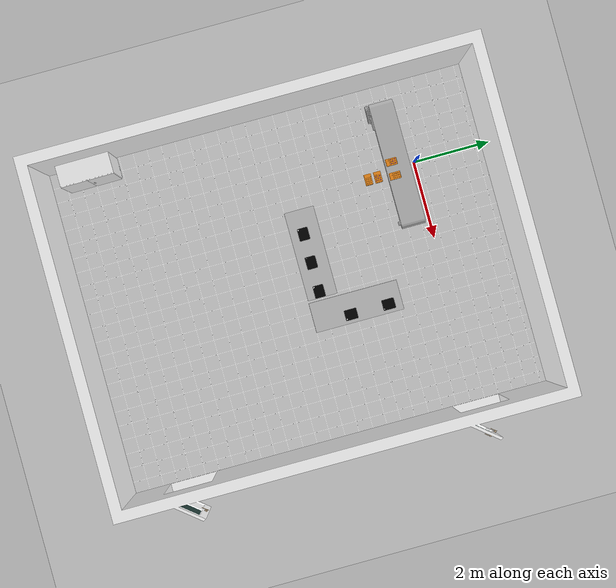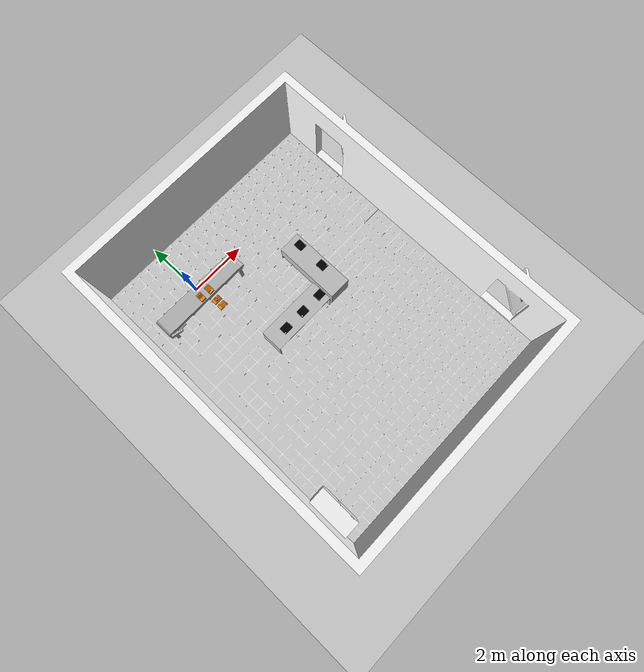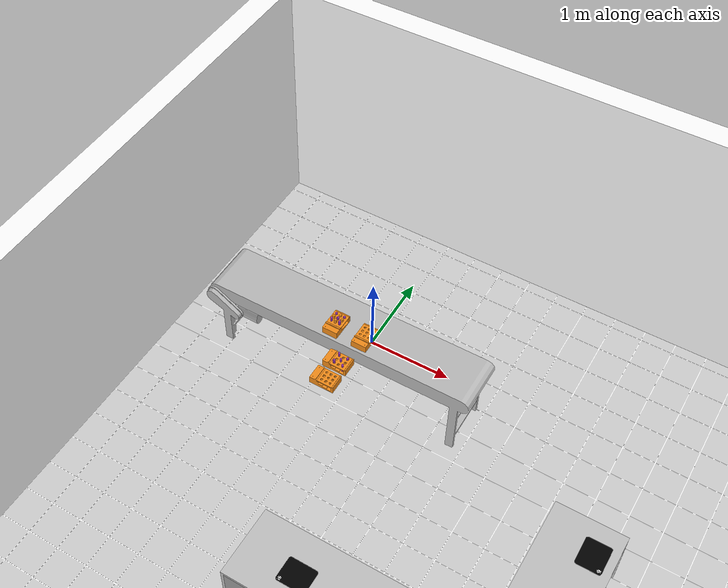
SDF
<sdf version="1.6">
 <world name="default">
  <gravity>0 0 -9.8</gravity>
  <physics type="ode" default="true">
   <ode>
    <solver><type>quick</type><iters>100</iters></solver>
    <constraints><cfm>1</cfm><erp>0.8</erp></constraints>
   </ode>
  </physics>
  <include><uri>model://ground_plane</uri></include>
  <include><uri>model://sun</uri></include>
  <model name="Lab_Wall">
   <include><static>true</static><uri>model://Lab_Wall</uri></include>
   <pose>6.589073 -9.422110 0 0 0 1.570461</pose>
  </model>
  <model name="sku_moto_taskboard_base">
   <include><static>true</static><uri>model://taskboard-base</uri></include>
   <pose>0.258805 -0.627349 0.910184 0 -0 3.14</pose>
  </model>
  <model name="sku_moto_taskboard_pegarray1">
   <include><static>true</static><uri>model://taskboard-pegarray1</uri></include>
   <pose>0.258805 -0.5891 0.9866 0 -0 3.14</pose>
  </model>
  <model name="sku_moto_taskfeeder_base">
   <include><static>true</static><uri>model://taskboard-base</uri></include>
   <pose>-0.098805 -0.627349 0.910184 0 -0 3.14</pose>
  </model>
  <model name="sku_moto_taskfeeder_pegarray1">
   <include><static>true</static><uri>model://taskboard-pegarray1</uri></include>
   <pose>-0.09888 -0.5891 0.9866 0 -0 3.14</pose>
  </model>
  <model name="sku_moto_taskfeeder_peg1">
   <include><static>true</static><uri>model://taskboard-roundpeg</uri></include>
   <pose>-0.04808 -0.639 0.9494 0 0 0</pose>
  </model>
  <model name="sku_moto_taskfeeder_peg2">
   <include><static>true</static><uri>model://taskboard-squarepeg</uri></include>
   <pose>-0.04808 -0.5891 0.9351 0 0 0</pose>
  </model>
  <model name="sku_moto_taskfeeder_peg3">
   <include><static>true</static><uri>model://taskboard-roundpeg</uri></include>
   <pose>-0.04808 -0.5383 0.9222 0 0 0</pose>
  </model>
  <model name="sku_moto_taskfeeder_peg4">
   <include><static>true</static><uri>model://taskboard-squarepeg</uri></include>
   <pose>-0.09888 -0.6399 0.9494 0 0 0</pose>
  </model>
  <model name="sku_moto_taskfeeder_peg5">
   <include><static>true</static><uri>model://taskboard-roundpeg</uri></include>
   <pose>-0.09888 -0.5891 0.935123 0 0 0</pose>
  </model>
  <model name="sku_moto_taskfeeder_peg6">
   <include><static>true</static><uri>model://taskboard-squarepeg</uri></include>
   <pose>-0.09888 -0.5383 0.9222 0 0 0</pose>
  </model>
  <model name="sku_moto_taskfeeder_peg7">
   <include><static>true</static><uri>model://taskboard-roundpeg</uri></include>
   <pose>-0.14968 -0.639 0.9494 0 0 0</pose>
  </model>
  <model name="sku_moto_taskfeeder_peg8">
   <include><static>true</static><uri>model://taskboard-squarepeg</uri></include>
   <pose>-0.14968 -0.5891 0.9351 0 0 0</pose>
  </model>
  <model name="sku_moto_taskfeeder_peg9">
   <include><static>true</static><uri>model://taskboard-roundpeg</uri></include>
   <pose>-0.14968 -0.5383 0.9222 0 0 0</pose>
  </model>
  <model name="sku_taskfeeder_base_fanuc1">
   <include><static>true</static><uri>model://taskboard-base</uri></include>
   <pose>0.183254 -1.053015 0.915990 0 -0 1.57079632679</pose>
  </model>
  <model name="sku_taskfeeder_pegarray_fanuc1">
   <include><static>true</static><uri>model://taskboard-pegarray1</uri></include>
   <pose>0.2189 -1.0538 0.991 0 -0 1.57079632679</pose>
  </model>
  <model name="sku_fanuctaskfeeder_peg1">
   <include><static>false</static><uri>model://taskboard-roundpeg</uri></include>
   <pose>0.2697	-1.1046	0.9307 0 0 0</pose>
  </model>
  <model name="sku_fanuctaskfeeder_peg3">
   <include><static>false</static><uri>model://taskboard-roundpeg</uri></include>
   <pose>0.2697	-1.003	0.9307 0 0 0</pose>
  </model>
  <model name="sku_fanuctaskfeeder_peg5">
   <include><static>false</static><uri>model://taskboard-roundpeg</uri></include>
   <pose>0.2189	-1.0538	0.941723 0 0 0</pose>
  </model>
  <model name="sku_fanuctaskfeeder_peg7">
   <include><static>false</static><uri>model://taskboard-roundpeg</uri></include>
   <pose>0.1681	-1.1046	0.9544 0 0 0</pose>
  </model>
  <model name="sku_fanuctaskfeeder_peg9">
   <include><static>false</static><uri>model://taskboard-roundpeg</uri></include>
   <pose>0.1681	-1.003	0.9544 0 0 0</pose>
  </model>
  <model name="sku_taskfeeder_base_fanuc2">
   <include><static>true</static><uri>model://taskboard-base</uri></include>
   <pose>0.183254 -1.303015 0.915990 0 -0 1.57079632679</pose>
  </model>
  <model name="sku_taskfeeder_pegarray_fanuc2">
   <include><static>true</static><uri>model://taskboard-pegarray1</uri></include>
   <pose>0.2189 -1.3038 0.991 0 -0 1.57079632679</pose>
  </model>
  <model name="Computer_Table1">
   <include><static>true</static><uri>model://computer_table</uri></include>
   <pose>-2.568999 -6.568235 0 0 0 0</pose>
  </model>
  <model name="Computer_Table2">
   <include><static>true</static><uri>model://computer_table</uri></include>
   <pose>6.535435 -6.578433 0 0 0 1.568747</pose>
  </model>
  <model name="mouse_pad1">
   <include><static>true</static><uri>model://mouse_pad</uri></include>
   <pose>0.899351 -3.366318 0.792325 0 0 0</pose>
  </model>
  <model name="mouse_pad2">
   <include><static>true</static><uri>model://mouse_pad</uri></include>
   <pose>1.641818 -3.368774 0.792348 0 0 0</pose>
  </model>
  <model name="mouse_pad3">
   <include><static>true</static><uri>model://mouse_pad</uri></include>
   <pose>2.393255 -3.369696 0.791977 0 0 0</pose>
  </model>
  <model name="mouse_pad4">
   <include><static>true</static><uri>model://mouse_pad</uri></include>
   <pose>3.461037 -2.771012 0.791977 0 0 1.571706</pose>
  </model>
  <model name="mouse_pad5">
   <include><static>true</static><uri>model://mouse_pad</uri></include>
   <pose>3.462044 -1.791097 0.792348 0 0 1.575830</pose>
  </model>
  <model name="Cabinet">
   <include><static>true</static><uri>model://cabinet_test</uri></include>
   <pose>-3.238440 -10.412200 0 0 0 1.576210</pose>
  </model>
  <include><uri>model://conveyor</uri><pose>-1.869440 -6.984981 0.0700 0 0 0</pose></include>
 </world>
</sdf>

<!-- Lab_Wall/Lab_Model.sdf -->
<sdf version='1.6'>
  <model name='Lab_Wall'>
    <static>true</static>
    <link name="link">
      <pose>0 0 0 0 0 0</pose>
      <visual name="visual">
            <geometry>
                <mesh>
                  <scale>1.2 1.2 1.2</scale>
                  <uri>model://Lab_Wall/meshes/lab_wall.dae</uri>
                </mesh>
            </geometry>
        </visual>
        <collision name="collision">
            <geometry>
                <mesh>
                  <scale>1.2 1.2 1.2</scale>
                  <uri>model://Lab_Wall/meshes/lab_wall.dae</uri>
                </mesh>
            </geometry>
        </collision>
    </link>
  </model>
</sdf>

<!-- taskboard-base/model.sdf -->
<sdf version="1.6">
    <model name="taskboard_base">
          <static>1</static>
            <link name="link1">
            <pose frame="">0 0 0 0 0 0</pose>
                <velocity_decay>
                    <angular>
             		.0005
             		</angular>
                </velocity_decay>
                <collision name="collision1">
                    <pose frame="">0 0 0 0 0 0</pose>
                    <geometry>
                        <mesh>
                            <scale>0.002 0.002 0.002</scale>
                            <uri>model://taskboard-base/taskboard_arraybase-1_Rotatex_Centered_ZeroZmin.stl</uri>
                        </mesh>
                    </geometry>
                    <max_contacts>10</max_contacts>
                </collision>
                <visual name="visual1">
                    <pose frame="">0 0 0 0 0 0</pose>
                    <geometry>
                        <mesh>
                            <scale>0.002 0.002 0.002</scale>
                            <uri>model://taskboard-base/taskboard_arraybase-1_Rotatex_Centered_ZeroZmin.stl</uri>
                        </mesh>
                    </geometry>
                    <material>
                        <script>
                            <name>Gazebo/Orange</name>
                            <uri>__default__</uri>
                        </script>
                    </material>
                </visual>
                <inertial>
                    <mass>0.0385</mass>
                    <inertia>
                        <ixx>4.78233711e+00</ixx>
                        <ixy>2.06443170e-09</ixy>
                        <ixz>3.14256508e-00</ixz>
                        <iyy>4.78233728e+00</iyy>
                        <iyz>1.83990112e-08</iyz>
                        <izz>2.44284722e-01</izz>
                    </inertia>
                </inertial>
                <self_collide>0</self_collide>
               <gravity>0</gravity>
            </link>
    </model>
</sdf>

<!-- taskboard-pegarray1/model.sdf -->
<sdf version="1.6">
    <model name="taskboard_pegarray1">
          <static>1</static>
            <link name="link1">
            <pose frame="">0 0 0 0 0 0</pose>
                <velocity_decay>
                    <angular>
             		.0005
             		</angular>
                </velocity_decay>
                <collision name="collision1">
                    <pose frame="">0 0 0 0 0 0</pose>
                    <geometry>
                        <mesh>
                            <scale>0.002 0.002 0.002</scale>
                            <uri>model://taskboard-pegarray1/taskboard-pegarray1-1_Rotatex_Centered_ZeroZmin.stl</uri>
                        </mesh>
                    </geometry>
                    <max_contacts>10</max_contacts>
                </collision>
                <visual name="visual1">
                    <pose frame="">0 0 0 0 0 0</pose>
                    <geometry>
                        <mesh>
                            <scale>0.002 0.002 0.002</scale>
                            <uri>model://taskboard-pegarray1/taskboard-pegarray1-1_Rotatex_Centered_ZeroZmin.stl</uri>
                        </mesh>
                    </geometry>
                    <material>
                        <script>
                            <name>Gazebo/Orange</name>
                            <uri>__default__</uri>
                        </script>
                    </material>
                </visual>
                <inertial>
                    <mass>0.0385</mass>
                    <inertia>
                        <ixx>4.78233711e+00</ixx>
                        <ixy>2.06443170e-09</ixy>
                        <ixz>3.14256508e-00</ixz>
                        <iyy>4.78233728e+00</iyy>
                        <iyz>1.83990112e-08</iyz>
                        <izz>2.44284722e-01</izz>
                    </inertia>
                </inertial>
                <self_collide>0</self_collide>
               <gravity>0</gravity>
            </link>
    </model>
</sdf>

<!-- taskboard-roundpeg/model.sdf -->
<sdf version="1.6">
    <model name="taskboard-roundpeg">
          <static>1</static>
            <link name="link1">
            <pose frame="">0 0 0 0 0 0</pose>
                <velocity_decay>
                    <angular>
             		.0005
             		</angular>
                </velocity_decay>
                <collision name="collision1">
                    <pose frame="">0 0 0 0 0 0</pose>
                    <geometry>
                        <mesh>
                            <scale>0.002 0.002 0.002</scale>
                            <uri>model://taskboard-roundpeg/taskboard_round_peg-1_Centered_ZeroZmin.stl</uri>
                        </mesh>
                    </geometry>
                    <max_contacts>10</max_contacts>
                </collision>
                <visual name="visual1">
                    <pose frame="">0 0 0 0 0 0</pose>
                    <geometry>
                        <mesh>
                            <scale>0.002 0.002 0.002</scale>
                            <uri>model://taskboard-roundpeg/taskboard_round_peg-1_Centered_ZeroZmin.stl</uri>
                        </mesh>
                    </geometry>
                    <material>
                        <script>
                            <name>Gazebo/Purple</name>
                            <uri>__default__</uri>
                        </script>
                    </material>
                </visual>
                <inertial>
                    <mass>0.0385</mass>
                    <inertia>
                        <ixx>4.78233711e+00</ixx>
                        <ixy>2.06443170e-09</ixy>
                        <ixz>3.14256508e-00</ixz>
                        <iyy>4.78233728e+00</iyy>
                        <iyz>1.83990112e-08</iyz>
                        <izz>2.44284722e-01</izz>
                    </inertia>
                </inertial>
                <self_collide>0</self_collide>
               <gravity>0</gravity>
            </link>
    </model>
</sdf>

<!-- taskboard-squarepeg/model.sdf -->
<sdf version="1.6">
    <model name="taskboard_squarepeg">
          <static>1</static>
            <link name="link1">
            <pose frame="">0 0 0 0 0 0</pose>
                <velocity_decay>
                    <angular>
             		.0005
             		</angular>
                </velocity_decay>
                <collision name="collision1">
                    <pose frame="">0 0 0 0 0 0</pose>
                    <geometry>
                        <mesh>
                            <scale>0.002 0.002 0.002</scale>
                            <uri>model://taskboard-squarepeg/taskboard_square_peg-1_Rotatex_Centered_ZeroZmin.stl</uri>
                        </mesh>
                    </geometry>
                    <max_contacts>10</max_contacts>
                </collision>
                <visual name="visual1">
                    <pose frame="">0 0 0 0 0 0</pose>
                    <geometry>
                        <mesh>
                            <scale>0.002 0.002 0.002</scale>
                            <uri>model://taskboard-squarepeg/taskboard_square_peg-1_Rotatex_Centered_ZeroZmin.stl</uri>
                        </mesh>
                    </geometry>
                    <material>
                        <script>
                            <name>Gazebo/Orange</name>
                            <uri>__default__</uri>
                        </script>
                    </material>
                </visual>
                <inertial>
                    <mass>0.0385</mass>
                    <inertia>
                        <ixx>4.78233711e+00</ixx>
                        <ixy>2.06443170e-09</ixy>
                        <ixz>3.14256508e-00</ixz>
                        <iyy>4.78233728e+00</iyy>
                        <iyz>1.83990112e-08</iyz>
                        <izz>2.44284722e-01</izz>
                    </inertia>
                </inertial>
                <self_collide>0</self_collide>
               <gravity>0</gravity>
            </link>
    </model>
</sdf>

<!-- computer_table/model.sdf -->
<sdf version='1.5'>
  <model name='Computer_Table'>
    <static>true</static>
    <link name="link">
      <pose>3 3 0 0 0 0</pose>
      <visual name="visual">
            <geometry>
                <mesh>
                    <uri>model://computer_table/meshes/computer_table.dae</uri>
                </mesh>
            </geometry>

        </visual>
        <collision name="collision">
            <geometry>
                <mesh>
                   <uri>model://computer_table/meshes/computer_table.dae</uri>
                </mesh>
            </geometry>
        </collision>
    </link>
  </model>
</sdf>

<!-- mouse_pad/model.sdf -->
<sdf version='1.5'>
  <model name='Mouse_Pad'>
    <static>true</static>
    <link name="link">
      <pose>0 0 0 0 0 0</pose>
      <visual name="visual">
            <geometry>
                <mesh>
                    <uri>model://mouse_pad/meshes/mouse_pad.dae</uri>
                </mesh>
            </geometry>

        </visual>
        <collision name="collision">
            <geometry>
                <mesh>
                   <uri>model://mouse_pad/meshes/mouse_pad.dae</uri>
                </mesh>
            </geometry>
        </collision>
    </link>
  </model>
</sdf>

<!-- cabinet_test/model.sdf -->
<sdf version='1.5'>
  <model name='New_Cabinet'>
    <static>true</static>
    <link name="link">
      <pose>0 0 0 0 0 0</pose>
      <visual name="visual">
            <geometry>
                <mesh>
                    <uri>model://cabinet_test/meshes/cab.dae</uri>
                </mesh>
            </geometry>
          <material>
          <script>
               <uri>model://cabinet_test/materials/textures</uri>
               </script>
          </material>
        </visual>
        <collision name="collision">
            <geometry>
                <mesh>
                   <uri>model://cabinet_test/meshes/cab.dae</uri>
                </mesh>
            </geometry>
        </collision>
    </link>
  </model>
</sdf>

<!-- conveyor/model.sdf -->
<sdf version="1.6">
  <!--model name="conveyor_belt"-->

    <model name="conveyor_belt_fixed">
      <static>1</static>
      <pose>0 0 0 0 0 0</pose>
      <link name="link">
        <pose>0 0 0 0 0 0</pose>
        <visual name="belt_visual">
          <geometry>
            <mesh>
              <uri>model://conveyor/meshes/revised_conveyor.stl</uri>
              <scale>1 1 1</scale>
            </mesh>
          </geometry>
        </visual>

       <collision name="belt_colli">
          <geometry>
            <mesh>
              <uri>model://conveyor/meshes/revised_conveyor.stl</uri>
              <scale>1 1 1</scale>
            </mesh>
          </geometry>
        </collision>

      </link>
    </model>

  <!--/model-->
</sdf>
